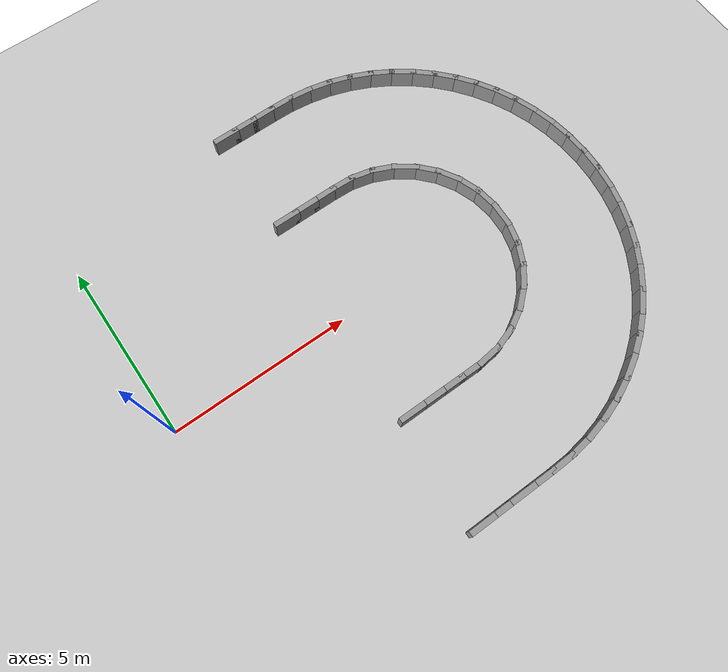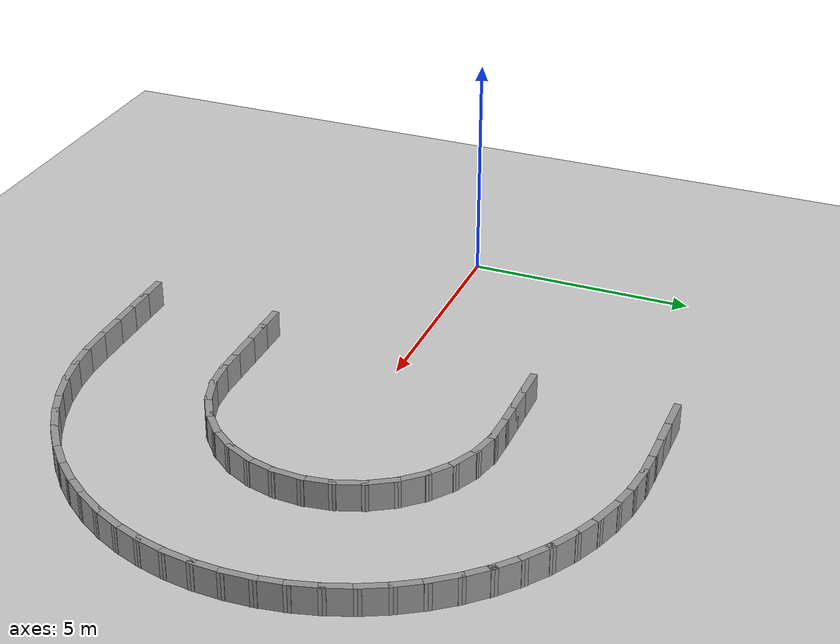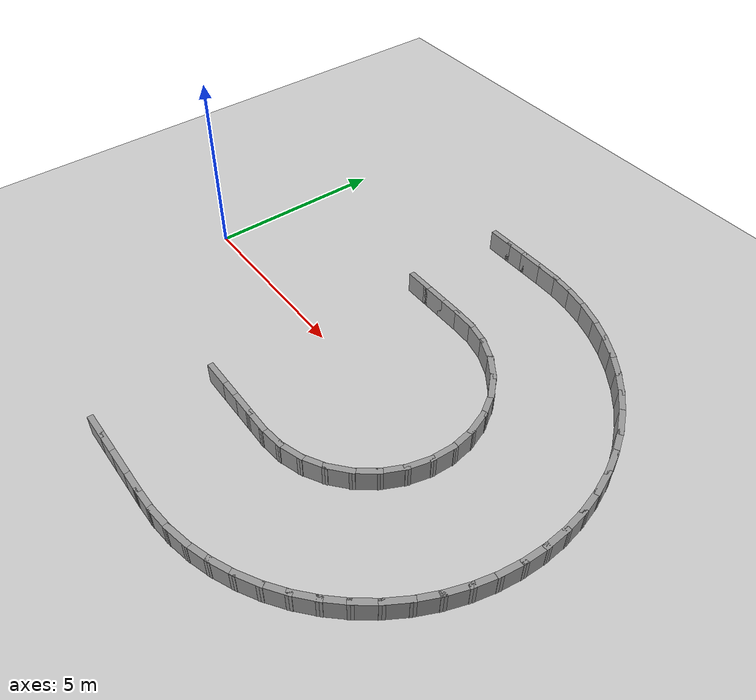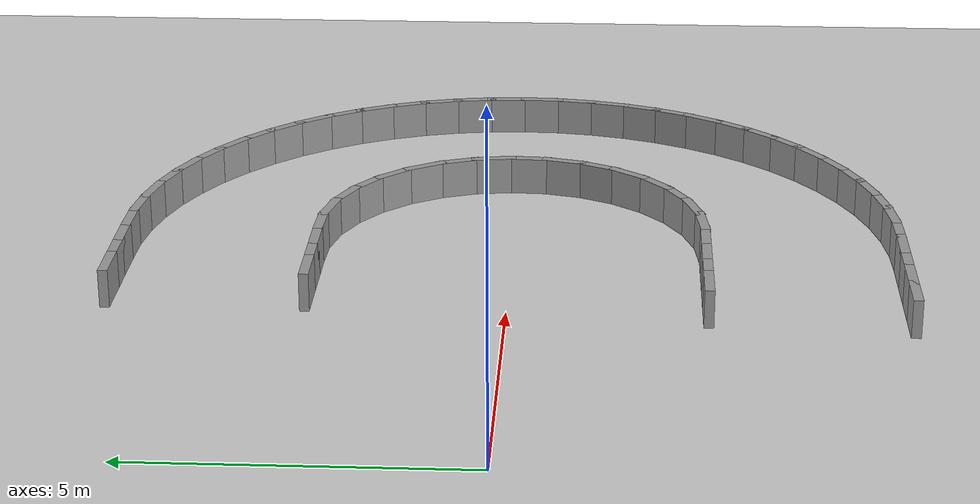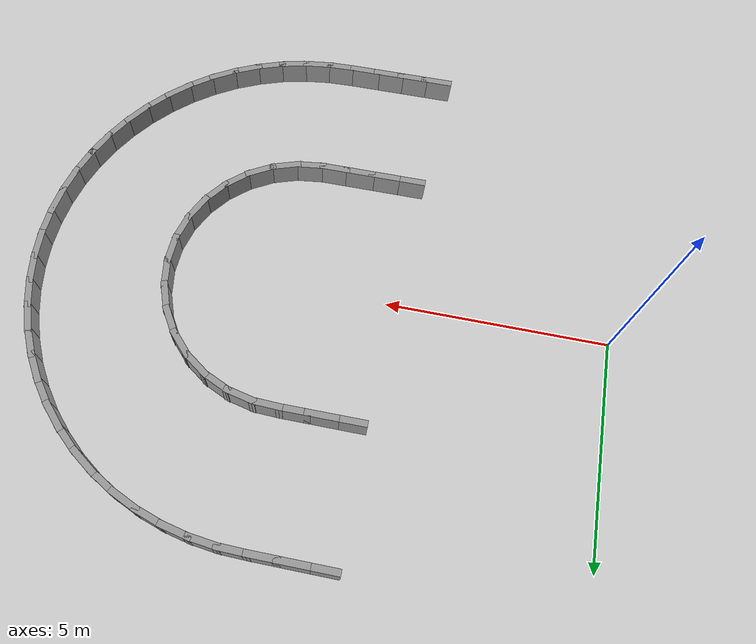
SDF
<sdf version="1.7">
 <world name="default">
  <model name="ground_plane">
   <static>1</static>
   <link name="link">
    <collision name="collision">
     <geometry><plane><normal>0 0 1</normal><size>100 100</size></plane></geometry>
     <surface><friction><ode><mu>100</mu><mu2>50</mu2></ode></friction></surface>
    </collision>
    <visual name="visual">
     <cast_shadows>0</cast_shadows>
     <geometry><plane><normal>0 0 1</normal><size>100 100</size></plane></geometry>
     <material>
      <script><uri>file://media/materials/scripts/gazebo.material</uri><name>Gazebo/Grey</name></script>
     </material>
    </visual>
   </link>
  </model>
  <model name="campus_loop">
   <link name="Wall_20">
    <collision name="Wall_20_Collision">
     <geometry><box><size>0.7500 0.1500 0.6000</size></box></geometry>
     <pose>0 0 0.3000 0 -0 0</pose>
    </collision>
    <visual name="Wall_20_Visual">
     <pose>0 0 0.3000 0 -0 0</pose>
     <geometry><box><size>0.7500 0.1500 0.6000</size></box></geometry>
     <material>
      <script><uri>file://media/materials/scripts/gazebo.material</uri><name>Gazebo/Grey</name></script>
      <ambient>1 1 1 1</ambient>
     </material>
    </visual>
    <pose>5.3000 6.0000 0 0 -0 0.00000</pose>
   </link>
   <link name="Wall_21">
    <collision name="Wall_21_Collision">
     <geometry><box><size>0.7500 0.1500 0.6000</size></box></geometry>
     <pose>0 0 0.3000 0 -0 0</pose>
    </collision>
    <visual name="Wall_21_Visual">
     <pose>0 0 0.3000 0 -0 0</pose>
     <geometry><box><size>0.7500 0.1500 0.6000</size></box></geometry>
     <material>
      <script><uri>file://media/materials/scripts/gazebo.material</uri><name>Gazebo/Grey</name></script>
      <ambient>1 1 1 1</ambient>
     </material>
    </visual>
    <pose>5.9000 6.0000 0 0 -0 0.00000</pose>
   </link>
   <link name="Wall_22">
    <collision name="Wall_22_Collision">
     <geometry><box><size>0.7500 0.1500 0.6000</size></box></geometry>
     <pose>0 0 0.3000 0 -0 0</pose>
    </collision>
    <visual name="Wall_22_Visual">
     <pose>0 0 0.3000 0 -0 0</pose>
     <geometry><box><size>0.7500 0.1500 0.6000</size></box></geometry>
     <material>
      <script><uri>file://media/materials/scripts/gazebo.material</uri><name>Gazebo/Grey</name></script>
      <ambient>1 1 1 1</ambient>
     </material>
    </visual>
    <pose>6.5000 6.0000 0 0 -0 0.00000</pose>
   </link>
   <link name="Wall_23">
    <collision name="Wall_23_Collision">
     <geometry><box><size>0.7498 0.1500 0.6000</size></box></geometry>
     <pose>0 0 0.3000 0 -0 0</pose>
    </collision>
    <visual name="Wall_23_Visual">
     <pose>0 0 0.3000 0 -0 0</pose>
     <geometry><box><size>0.7498 0.1500 0.6000</size></box></geometry>
     <material>
      <script><uri>file://media/materials/scripts/gazebo.material</uri><name>Gazebo/Grey</name></script>
      <ambient>1 1 1 1</ambient>
     </material>
    </visual>
    <pose>7.0998 5.9933 0 0 -0 -0.02244</pose>
   </link>
   <link name="Wall_24">
    <collision name="Wall_24_Collision">
     <geometry><box><size>0.7497 0.1500 0.6000</size></box></geometry>
     <pose>0 0 0.3000 0 -0 0</pose>
    </collision>
    <visual name="Wall_24_Visual">
     <pose>0 0 0.3000 0 -0 0</pose>
     <geometry><box><size>0.7497 0.1500 0.6000</size></box></geometry>
     <material>
      <script><uri>file://media/materials/scripts/gazebo.material</uri><name>Gazebo/Grey</name></script>
      <ambient>1 1 1 1</ambient>
     </material>
    </visual>
    <pose>7.6975 5.9516 0 0 -0 -0.11676</pose>
   </link>
   <link name="Wall_25">
    <collision name="Wall_25_Collision">
     <geometry><box><size>0.7497 0.1500 0.6000</size></box></geometry>
     <pose>0 0 0.3000 0 -0 0</pose>
    </collision>
    <visual name="Wall_25_Visual">
     <pose>0 0 0.3000 0 -0 0</pose>
     <geometry><box><size>0.7497 0.1500 0.6000</size></box></geometry>
     <material>
      <script><uri>file://media/materials/scripts/gazebo.material</uri><name>Gazebo/Grey</name></script>
      <ambient>1 1 1 1</ambient>
     </material>
    </visual>
    <pose>8.2882 5.8523 0 0 -0 -0.21648</pose>
   </link>
   <link name="Wall_26">
    <collision name="Wall_26_Collision">
     <geometry><box><size>0.7497 0.1500 0.6000</size></box></geometry>
     <pose>0 0 0.3000 0 -0 0</pose>
    </collision>
    <visual name="Wall_26_Visual">
     <pose>0 0 0.3000 0 -0 0</pose>
     <geometry><box><size>0.7497 0.1500 0.6000</size></box></geometry>
     <material>
      <script><uri>file://media/materials/scripts/gazebo.material</uri><name>Gazebo/Grey</name></script>
      <ambient>1 1 1 1</ambient>
     </material>
    </visual>
    <pose>8.8661 5.6944 0 0 -0 -0.31677</pose>
   </link>
   <link name="Wall_27">
    <collision name="Wall_27_Collision">
     <geometry><box><size>0.7497 0.1500 0.6000</size></box></geometry>
     <pose>0 0 0.3000 0 -0 0</pose>
    </collision>
    <visual name="Wall_27_Visual">
     <pose>0 0 0.3000 0 -0 0</pose>
     <geometry><box><size>0.7497 0.1500 0.6000</size></box></geometry>
     <material>
      <script><uri>file://media/materials/scripts/gazebo.material</uri><name>Gazebo/Grey</name></script>
      <ambient>1 1 1 1</ambient>
     </material>
    </visual>
    <pose>9.4252 5.4796 0 0 -0 -0.41676</pose>
   </link>
   <link name="Wall_28">
    <collision name="Wall_28_Collision">
     <geometry><box><size>0.7497 0.1500 0.6000</size></box></geometry>
     <pose>0 0 0.3000 0 -0 0</pose>
    </collision>
    <visual name="Wall_28_Visual">
     <pose>0 0 0.3000 0 -0 0</pose>
     <geometry><box><size>0.7497 0.1500 0.6000</size></box></geometry>
     <material>
      <script><uri>file://media/materials/scripts/gazebo.material</uri><name>Gazebo/Grey</name></script>
      <ambient>1 1 1 1</ambient>
     </material>
    </visual>
    <pose>9.9602 5.2102 0 0 -0 -0.51648</pose>
   </link>
   <link name="Wall_29">
    <collision name="Wall_29_Collision">
     <geometry><box><size>0.7497 0.1500 0.6000</size></box></geometry>
     <pose>0 0 0.3000 0 -0 0</pose>
    </collision>
    <visual name="Wall_29_Visual">
     <pose>0 0 0.3000 0 -0 0</pose>
     <geometry><box><size>0.7497 0.1500 0.6000</size></box></geometry>
     <material>
      <script><uri>file://media/materials/scripts/gazebo.material</uri><name>Gazebo/Grey</name></script>
      <ambient>1 1 1 1</ambient>
     </material>
    </visual>
    <pose>10.4655 4.8886 0 0 -0 -0.61678</pose>
   </link>
   <link name="Wall_30">
    <collision name="Wall_30_Collision">
     <geometry><box><size>0.7497 0.1500 0.6000</size></box></geometry>
     <pose>0 0 0.3000 0 -0 0</pose>
    </collision>
    <visual name="Wall_30_Visual">
     <pose>0 0 0.3000 0 -0 0</pose>
     <geometry><box><size>0.7497 0.1500 0.6000</size></box></geometry>
     <material>
      <script><uri>file://media/materials/scripts/gazebo.material</uri><name>Gazebo/Grey</name></script>
      <ambient>1 1 1 1</ambient>
     </material>
    </visual>
    <pose>10.9363 4.5182 0 0 -0 -0.71676</pose>
   </link>
   <link name="Wall_31">
    <collision name="Wall_31_Collision">
     <geometry><box><size>0.7497 0.1500 0.6000</size></box></geometry>
     <pose>0 0 0.3000 0 -0 0</pose>
    </collision>
    <visual name="Wall_31_Visual">
     <pose>0 0 0.3000 0 -0 0</pose>
     <geometry><box><size>0.7497 0.1500 0.6000</size></box></geometry>
     <material>
      <script><uri>file://media/materials/scripts/gazebo.material</uri><name>Gazebo/Grey</name></script>
      <ambient>1 1 1 1</ambient>
     </material>
    </visual>
    <pose>11.3677 4.1027 0 0 -0 -0.81648</pose>
   </link>
   <link name="Wall_32">
    <collision name="Wall_32_Collision">
     <geometry><box><size>0.7497 0.1500 0.6000</size></box></geometry>
     <pose>0 0 0.3000 0 -0 0</pose>
    </collision>
    <visual name="Wall_32_Visual">
     <pose>0 0 0.3000 0 -0 0</pose>
     <geometry><box><size>0.7497 0.1500 0.6000</size></box></geometry>
     <material>
      <script><uri>file://media/materials/scripts/gazebo.material</uri><name>Gazebo/Grey</name></script>
      <ambient>1 1 1 1</ambient>
     </material>
    </visual>
    <pose>11.7555 3.6461 0 0 -0 -0.91678</pose>
   </link>
   <link name="Wall_33">
    <collision name="Wall_33_Collision">
     <geometry><box><size>0.7497 0.1500 0.6000</size></box></geometry>
     <pose>0 0 0.3000 0 -0 0</pose>
    </collision>
    <visual name="Wall_33_Visual">
     <pose>0 0 0.3000 0 -0 0</pose>
     <geometry><box><size>0.7497 0.1500 0.6000</size></box></geometry>
     <material>
      <script><uri>file://media/materials/scripts/gazebo.material</uri><name>Gazebo/Grey</name></script>
      <ambient>1 1 1 1</ambient>
     </material>
    </visual>
    <pose>12.0957 3.1531 0 0 -0 -1.01676</pose>
   </link>
   <link name="Wall_34">
    <collision name="Wall_34_Collision">
     <geometry><box><size>0.7497 0.1500 0.6000</size></box></geometry>
     <pose>0 0 0.3000 0 -0 0</pose>
    </collision>
    <visual name="Wall_34_Visual">
     <pose>0 0 0.3000 0 -0 0</pose>
     <geometry><box><size>0.7497 0.1500 0.6000</size></box></geometry>
     <material>
      <script><uri>file://media/materials/scripts/gazebo.material</uri><name>Gazebo/Grey</name></script>
      <ambient>1 1 1 1</ambient>
     </material>
    </visual>
    <pose>12.3850 2.6287 0 0 -0 -1.11648</pose>
   </link>
   <link name="Wall_35">
    <collision name="Wall_35_Collision">
     <geometry><box><size>0.7497 0.1500 0.6000</size></box></geometry>
     <pose>0 0 0.3000 0 -0 0</pose>
    </collision>
    <visual name="Wall_35_Visual">
     <pose>0 0 0.3000 0 -0 0</pose>
     <geometry><box><size>0.7497 0.1500 0.6000</size></box></geometry>
     <material>
      <script><uri>file://media/materials/scripts/gazebo.material</uri><name>Gazebo/Grey</name></script>
      <ambient>1 1 1 1</ambient>
     </material>
    </visual>
    <pose>12.6206 2.0779 0 0 -0 -1.21679</pose>
   </link>
   <link name="Wall_36">
    <collision name="Wall_36_Collision">
     <geometry><box><size>0.7497 0.1500 0.6000</size></box></geometry>
     <pose>0 0 0.3000 0 -0 0</pose>
    </collision>
    <visual name="Wall_36_Visual">
     <pose>0 0 0.3000 0 -0 0</pose>
     <geometry><box><size>0.7497 0.1500 0.6000</size></box></geometry>
     <material>
      <script><uri>file://media/materials/scripts/gazebo.material</uri><name>Gazebo/Grey</name></script>
      <ambient>1 1 1 1</ambient>
     </material>
    </visual>
    <pose>12.7999 1.5064 0 0 -0 -1.31676</pose>
   </link>
   <link name="Wall_37">
    <collision name="Wall_37_Collision">
     <geometry><box><size>0.7497 0.1500 0.6000</size></box></geometry>
     <pose>0 0 0.3000 0 -0 0</pose>
    </collision>
    <visual name="Wall_37_Visual">
     <pose>0 0 0.3000 0 -0 0</pose>
     <geometry><box><size>0.7497 0.1500 0.6000</size></box></geometry>
     <material>
      <script><uri>file://media/materials/scripts/gazebo.material</uri><name>Gazebo/Grey</name></script>
      <ambient>1 1 1 1</ambient>
     </material>
    </visual>
    <pose>12.9214 0.9199 0 0 -0 -1.41648</pose>
   </link>
   <link name="Wall_38">
    <collision name="Wall_38_Collision">
     <geometry><box><size>0.7497 0.1500 0.6000</size></box></geometry>
     <pose>0 0 0.3000 0 -0 0</pose>
    </collision>
    <visual name="Wall_38_Visual">
     <pose>0 0 0.3000 0 -0 0</pose>
     <geometry><box><size>0.7497 0.1500 0.6000</size></box></geometry>
     <material>
      <script><uri>file://media/materials/scripts/gazebo.material</uri><name>Gazebo/Grey</name></script>
      <ambient>1 1 1 1</ambient>
     </material>
    </visual>
    <pose>12.9836 0.3241 0 0 -0 -1.51680</pose>
   </link>
   <link name="Wall_39">
    <collision name="Wall_39_Collision">
     <geometry><box><size>0.7497 0.1500 0.6000</size></box></geometry>
     <pose>0 0 0.3000 0 -0 0</pose>
    </collision>
    <visual name="Wall_39_Visual">
     <pose>0 0 0.3000 0 -0 0</pose>
     <geometry><box><size>0.7497 0.1500 0.6000</size></box></geometry>
     <material>
      <script><uri>file://media/materials/scripts/gazebo.material</uri><name>Gazebo/Grey</name></script>
      <ambient>1 1 1 1</ambient>
     </material>
    </visual>
    <pose>12.9860 -0.2749 0 0 -0 -1.61676</pose>
   </link>
   <link name="Wall_40">
    <collision name="Wall_40_Collision">
     <geometry><box><size>0.7497 0.1500 0.6000</size></box></geometry>
     <pose>0 0 0.3000 0 -0 0</pose>
    </collision>
    <visual name="Wall_40_Visual">
     <pose>0 0 0.3000 0 -0 0</pose>
     <geometry><box><size>0.7497 0.1500 0.6000</size></box></geometry>
     <material>
      <script><uri>file://media/materials/scripts/gazebo.material</uri><name>Gazebo/Grey</name></script>
      <ambient>1 1 1 1</ambient>
     </material>
    </visual>
    <pose>12.9287 -0.8711 0 0 -0 -1.71648</pose>
   </link>
   <link name="Wall_41">
    <collision name="Wall_41_Collision">
     <geometry><box><size>0.7497 0.1500 0.6000</size></box></geometry>
     <pose>0 0 0.3000 0 -0 0</pose>
    </collision>
    <visual name="Wall_41_Visual">
     <pose>0 0 0.3000 0 -0 0</pose>
     <geometry><box><size>0.7497 0.1500 0.6000</size></box></geometry>
     <material>
      <script><uri>file://media/materials/scripts/gazebo.material</uri><name>Gazebo/Grey</name></script>
      <ambient>1 1 1 1</ambient>
     </material>
    </visual>
    <pose>12.8122 -1.4587 0 0 -0 -1.81681</pose>
   </link>
   <link name="Wall_42">
    <collision name="Wall_42_Collision">
     <geometry><box><size>0.7497 0.1500 0.6000</size></box></geometry>
     <pose>0 0 0.3000 0 -0 0</pose>
    </collision>
    <visual name="Wall_42_Visual">
     <pose>0 0 0.3000 0 -0 0</pose>
     <geometry><box><size>0.7497 0.1500 0.6000</size></box></geometry>
     <material>
      <script><uri>file://media/materials/scripts/gazebo.material</uri><name>Gazebo/Grey</name></script>
      <ambient>1 1 1 1</ambient>
     </material>
    </visual>
    <pose>12.6374 -2.0316 0 0 -0 -1.91676</pose>
   </link>
   <link name="Wall_43">
    <collision name="Wall_43_Collision">
     <geometry><box><size>0.7497 0.1500 0.6000</size></box></geometry>
     <pose>0 0 0.3000 0 -0 0</pose>
    </collision>
    <visual name="Wall_43_Visual">
     <pose>0 0 0.3000 0 -0 0</pose>
     <geometry><box><size>0.7497 0.1500 0.6000</size></box></geometry>
     <material>
      <script><uri>file://media/materials/scripts/gazebo.material</uri><name>Gazebo/Grey</name></script>
      <ambient>1 1 1 1</ambient>
     </material>
    </visual>
    <pose>12.4065 -2.5843 0 0 -0 -2.01648</pose>
   </link>
   <link name="Wall_44">
    <collision name="Wall_44_Collision">
     <geometry><box><size>0.7497 0.1500 0.6000</size></box></geometry>
     <pose>0 0 0.3000 0 -0 0</pose>
    </collision>
    <visual name="Wall_44_Visual">
     <pose>0 0 0.3000 0 -0 0</pose>
     <geometry><box><size>0.7497 0.1500 0.6000</size></box></geometry>
     <material>
      <script><uri>file://media/materials/scripts/gazebo.material</uri><name>Gazebo/Grey</name></script>
      <ambient>1 1 1 1</ambient>
     </material>
    </visual>
    <pose>12.1215 -3.1111 0 0 -0 -2.11682</pose>
   </link>
   <link name="Wall_45">
    <collision name="Wall_45_Collision">
     <geometry><box><size>0.7497 0.1500 0.6000</size></box></geometry>
     <pose>0 0 0.3000 0 -0 0</pose>
    </collision>
    <visual name="Wall_45_Visual">
     <pose>0 0 0.3000 0 -0 0</pose>
     <geometry><box><size>0.7497 0.1500 0.6000</size></box></geometry>
     <material>
      <script><uri>file://media/materials/scripts/gazebo.material</uri><name>Gazebo/Grey</name></script>
      <ambient>1 1 1 1</ambient>
     </material>
    </visual>
    <pose>11.7853 -3.6069 0 0 -0 -2.21676</pose>
   </link>
   <link name="Wall_46">
    <collision name="Wall_46_Collision">
     <geometry><box><size>0.7497 0.1500 0.6000</size></box></geometry>
     <pose>0 0 0.3000 0 -0 0</pose>
    </collision>
    <visual name="Wall_46_Visual">
     <pose>0 0 0.3000 0 -0 0</pose>
     <geometry><box><size>0.7497 0.1500 0.6000</size></box></geometry>
     <material>
      <script><uri>file://media/materials/scripts/gazebo.material</uri><name>Gazebo/Grey</name></script>
      <ambient>1 1 1 1</ambient>
     </material>
    </visual>
    <pose>11.4013 -4.0666 0 0 -0 -2.31648</pose>
   </link>
   <link name="Wall_47">
    <collision name="Wall_47_Collision">
     <geometry><box><size>0.7497 0.1500 0.6000</size></box></geometry>
     <pose>0 0 0.3000 0 -0 0</pose>
    </collision>
    <visual name="Wall_47_Visual">
     <pose>0 0 0.3000 0 -0 0</pose>
     <geometry><box><size>0.7497 0.1500 0.6000</size></box></geometry>
     <material>
      <script><uri>file://media/materials/scripts/gazebo.material</uri><name>Gazebo/Grey</name></script>
      <ambient>1 1 1 1</ambient>
     </material>
    </visual>
    <pose>10.9733 -4.4857 0 0 -0 -2.41683</pose>
   </link>
   <link name="Wall_48">
    <collision name="Wall_48_Collision">
     <geometry><box><size>0.7497 0.1500 0.6000</size></box></geometry>
     <pose>0 0 0.3000 0 -0 0</pose>
    </collision>
    <visual name="Wall_48_Visual">
     <pose>0 0 0.3000 0 -0 0</pose>
     <geometry><box><size>0.7497 0.1500 0.6000</size></box></geometry>
     <material>
      <script><uri>file://media/materials/scripts/gazebo.material</uri><name>Gazebo/Grey</name></script>
      <ambient>1 1 1 1</ambient>
     </material>
    </visual>
    <pose>10.5056 -4.8599 0 0 -0 -2.51676</pose>
   </link>
   <link name="Wall_49">
    <collision name="Wall_49_Collision">
     <geometry><box><size>0.7497 0.1500 0.6000</size></box></geometry>
     <pose>0 0 0.3000 0 -0 0</pose>
    </collision>
    <visual name="Wall_49_Visual">
     <pose>0 0 0.3000 0 -0 0</pose>
     <geometry><box><size>0.7497 0.1500 0.6000</size></box></geometry>
     <material>
      <script><uri>file://media/materials/scripts/gazebo.material</uri><name>Gazebo/Grey</name></script>
      <ambient>1 1 1 1</ambient>
     </material>
    </visual>
    <pose>10.0029 -5.1857 0 0 -0 -2.61648</pose>
   </link>
   <link name="Wall_50">
    <collision name="Wall_50_Collision">
     <geometry><box><size>0.7497 0.1500 0.6000</size></box></geometry>
     <pose>0 0 0.3000 0 -0 0</pose>
    </collision>
    <visual name="Wall_50_Visual">
     <pose>0 0 0.3000 0 -0 0</pose>
     <geometry><box><size>0.7497 0.1500 0.6000</size></box></geometry>
     <material>
      <script><uri>file://media/materials/scripts/gazebo.material</uri><name>Gazebo/Grey</name></script>
      <ambient>1 1 1 1</ambient>
     </material>
    </visual>
    <pose>9.4702 -5.4596 0 0 -0 -2.71684</pose>
   </link>
   <link name="Wall_51">
    <collision name="Wall_51_Collision">
     <geometry><box><size>0.7497 0.1500 0.6000</size></box></geometry>
     <pose>0 0 0.3000 0 -0 0</pose>
    </collision>
    <visual name="Wall_51_Visual">
     <pose>0 0 0.3000 0 -0 0</pose>
     <geometry><box><size>0.7497 0.1500 0.6000</size></box></geometry>
     <material>
      <script><uri>file://media/materials/scripts/gazebo.material</uri><name>Gazebo/Grey</name></script>
      <ambient>1 1 1 1</ambient>
     </material>
    </visual>
    <pose>8.9128 -5.6788 0 0 -0 -2.81676</pose>
   </link>
   <link name="Wall_52">
    <collision name="Wall_52_Collision">
     <geometry><box><size>0.7497 0.1500 0.6000</size></box></geometry>
     <pose>0 0 0.3000 0 -0 0</pose>
    </collision>
    <visual name="Wall_52_Visual">
     <pose>0 0 0.3000 0 -0 0</pose>
     <geometry><box><size>0.7497 0.1500 0.6000</size></box></geometry>
     <material>
      <script><uri>file://media/materials/scripts/gazebo.material</uri><name>Gazebo/Grey</name></script>
      <ambient>1 1 1 1</ambient>
     </material>
    </visual>
    <pose>8.3363 -5.8415 0 0 -0 -2.91649</pose>
   </link>
   <link name="Wall_53">
    <collision name="Wall_53_Collision">
     <geometry><box><size>0.7497 0.1500 0.6000</size></box></geometry>
     <pose>0 0 0.3000 0 -0 0</pose>
    </collision>
    <visual name="Wall_53_Visual">
     <pose>0 0 0.3000 0 -0 0</pose>
     <geometry><box><size>0.7497 0.1500 0.6000</size></box></geometry>
     <material>
      <script><uri>file://media/materials/scripts/gazebo.material</uri><name>Gazebo/Grey</name></script>
      <ambient>1 1 1 1</ambient>
     </material>
    </visual>
    <pose>7.7465 -5.9457 0 0 -0 -3.01684</pose>
   </link>
   <link name="Wall_54">
    <collision name="Wall_54_Collision">
     <geometry><box><size>0.7498 0.1500 0.6000</size></box></geometry>
     <pose>0 0 0.3000 0 -0 0</pose>
    </collision>
    <visual name="Wall_54_Visual">
     <pose>0 0 0.3000 0 -0 0</pose>
     <geometry><box><size>0.7498 0.1500 0.6000</size></box></geometry>
     <material>
      <script><uri>file://media/materials/scripts/gazebo.material</uri><name>Gazebo/Grey</name></script>
      <ambient>1 1 1 1</ambient>
     </material>
    </visual>
    <pose>7.1491 -5.9915 0 0 -0 -3.11331</pose>
   </link>
   <link name="Wall_55">
    <collision name="Wall_55_Collision">
     <geometry><box><size>0.7500 0.1500 0.6000</size></box></geometry>
     <pose>0 0 0.3000 0 -0 0</pose>
    </collision>
    <visual name="Wall_55_Visual">
     <pose>0 0 0.3000 0 -0 0</pose>
     <geometry><box><size>0.7500 0.1500 0.6000</size></box></geometry>
     <material>
      <script><uri>file://media/materials/scripts/gazebo.material</uri><name>Gazebo/Grey</name></script>
      <ambient>1 1 1 1</ambient>
     </material>
    </visual>
    <pose>6.5494 -6.0000 0 0 -0 3.14159</pose>
   </link>
   <link name="Wall_56">
    <collision name="Wall_56_Collision">
     <geometry><box><size>0.7500 0.1500 0.6000</size></box></geometry>
     <pose>0 0 0.3000 0 -0 0</pose>
    </collision>
    <visual name="Wall_56_Visual">
     <pose>0 0 0.3000 0 -0 0</pose>
     <geometry><box><size>0.7500 0.1500 0.6000</size></box></geometry>
     <material>
      <script><uri>file://media/materials/scripts/gazebo.material</uri><name>Gazebo/Grey</name></script>
      <ambient>1 1 1 1</ambient>
     </material>
    </visual>
    <pose>5.9494 -6.0000 0 0 -0 3.14159</pose>
   </link>
   <link name="Wall_57">
    <collision name="Wall_57_Collision">
     <geometry><box><size>0.7500 0.1500 0.6000</size></box></geometry>
     <pose>0 0 0.3000 0 -0 0</pose>
    </collision>
    <visual name="Wall_57_Visual">
     <pose>0 0 0.3000 0 -0 0</pose>
     <geometry><box><size>0.7500 0.1500 0.6000</size></box></geometry>
     <material>
      <script><uri>file://media/materials/scripts/gazebo.material</uri><name>Gazebo/Grey</name></script>
      <ambient>1 1 1 1</ambient>
     </material>
    </visual>
    <pose>5.3494 -6.0000 0 0 -0 3.14159</pose>
   </link>
   <link name="Wall_58">
    <collision name="Wall_58_Collision">
     <geometry><box><size>0.7500 0.1500 0.6000</size></box></geometry>
     <pose>0 0 0.3000 0 -0 0</pose>
    </collision>
    <visual name="Wall_58_Visual">
     <pose>0 0 0.3000 0 -0 0</pose>
     <geometry><box><size>0.7500 0.1500 0.6000</size></box></geometry>
     <material>
      <script><uri>file://media/materials/scripts/gazebo.material</uri><name>Gazebo/Grey</name></script>
      <ambient>1 1 1 1</ambient>
     </material>
    </visual>
    <pose>4.7494 -6.0000 0 0 -0 3.14159</pose>
   </link>
   <link name="Wall_129">
    <collision name="Wall_129_Collision">
     <geometry><box><size>0.7500 0.1500 0.6000</size></box></geometry>
     <pose>0 0 0.3000 0 -0 0</pose>
    </collision>
    <visual name="Wall_129_Visual">
     <pose>0 0 0.3000 0 -0 0</pose>
     <geometry><box><size>0.7500 0.1500 0.6000</size></box></geometry>
     <material>
      <script><uri>file://media/materials/scripts/gazebo.material</uri><name>Gazebo/Grey</name></script>
      <ambient>1 1 1 1</ambient>
     </material>
    </visual>
    <pose>5.3000 3.0000 0 0 -0 0.00000</pose>
   </link>
   <link name="Wall_130">
    <collision name="Wall_130_Collision">
     <geometry><box><size>0.7500 0.1500 0.6000</size></box></geometry>
     <pose>0 0 0.3000 0 -0 0</pose>
    </collision>
    <visual name="Wall_130_Visual">
     <pose>0 0 0.3000 0 -0 0</pose>
     <geometry><box><size>0.7500 0.1500 0.6000</size></box></geometry>
     <material>
      <script><uri>file://media/materials/scripts/gazebo.material</uri><name>Gazebo/Grey</name></script>
      <ambient>1 1 1 1</ambient>
     </material>
    </visual>
    <pose>5.9000 3.0000 0 0 -0 0.00000</pose>
   </link>
   <link name="Wall_131">
    <collision name="Wall_131_Collision">
     <geometry><box><size>0.7500 0.1500 0.6000</size></box></geometry>
     <pose>0 0 0.3000 0 -0 0</pose>
    </collision>
    <visual name="Wall_131_Visual">
     <pose>0 0 0.3000 0 -0 0</pose>
     <geometry><box><size>0.7500 0.1500 0.6000</size></box></geometry>
     <material>
      <script><uri>file://media/materials/scripts/gazebo.material</uri><name>Gazebo/Grey</name></script>
      <ambient>1 1 1 1</ambient>
     </material>
    </visual>
    <pose>6.5000 3.0000 0 0 -0 0.00000</pose>
   </link>
   <link name="Wall_132">
    <collision name="Wall_132_Collision">
     <geometry><box><size>0.7258 0.1500 0.6000</size></box></geometry>
     <pose>0 0 0.3000 0 -0 0</pose>
    </collision>
    <visual name="Wall_132_Visual">
     <pose>0 0 0.3000 0 -0 0</pose>
     <geometry><box><size>0.7258 0.1500 0.6000</size></box></geometry>
     <material>
      <script><uri>file://media/materials/scripts/gazebo.material</uri><name>Gazebo/Grey</name></script>
      <ambient>1 1 1 1</ambient>
     </material>
    </visual>
    <pose>7.0877 2.9882 0 0 -0 -0.04098</pose>
   </link>
   <link name="Wall_133">
    <collision name="Wall_133_Collision">
     <geometry><box><size>0.7490 0.1500 0.6000</size></box></geometry>
     <pose>0 0 0.3000 0 -0 0</pose>
    </collision>
    <visual name="Wall_133_Visual">
     <pose>0 0 0.3000 0 -0 0</pose>
     <geometry><box><size>0.7490 0.1500 0.6000</size></box></geometry>
     <material>
      <script><uri>file://media/materials/scripts/gazebo.material</uri><name>Gazebo/Grey</name></script>
      <ambient>1 1 1 1</ambient>
     </material>
    </visual>
    <pose>7.6672 2.9094 0 0 -0 -0.22556</pose>
   </link>
   <link name="Wall_134">
    <collision name="Wall_134_Collision">
     <geometry><box><size>0.7490 0.1500 0.6000</size></box></geometry>
     <pose>0 0 0.3000 0 -0 0</pose>
    </collision>
    <visual name="Wall_134_Visual">
     <pose>0 0 0.3000 0 -0 0</pose>
     <geometry><box><size>0.7490 0.1500 0.6000</size></box></geometry>
     <material>
      <script><uri>file://media/materials/scripts/gazebo.material</uri><name>Gazebo/Grey</name></script>
      <ambient>1 1 1 1</ambient>
     </material>
    </visual>
    <pose>8.2320 2.7188 0 0 -0 -0.42542</pose>
   </link>
   <link name="Wall_135">
    <collision name="Wall_135_Collision">
     <geometry><box><size>0.7490 0.1500 0.6000</size></box></geometry>
     <pose>0 0 0.3000 0 -0 0</pose>
    </collision>
    <visual name="Wall_135_Visual">
     <pose>0 0 0.3000 0 -0 0</pose>
     <geometry><box><size>0.7490 0.1500 0.6000</size></box></geometry>
     <material>
      <script><uri>file://media/materials/scripts/gazebo.material</uri><name>Gazebo/Grey</name></script>
      <ambient>1 1 1 1</ambient>
     </material>
    </visual>
    <pose>8.7476 2.4199 0 0 -0 -0.62535</pose>
   </link>
   <link name="Wall_136">
    <collision name="Wall_136_Collision">
     <geometry><box><size>0.7490 0.1500 0.6000</size></box></geometry>
     <pose>0 0 0.3000 0 -0 0</pose>
    </collision>
    <visual name="Wall_136_Visual">
     <pose>0 0 0.3000 0 -0 0</pose>
     <geometry><box><size>0.7490 0.1500 0.6000</size></box></geometry>
     <material>
      <script><uri>file://media/materials/scripts/gazebo.material</uri><name>Gazebo/Grey</name></script>
      <ambient>1 1 1 1</ambient>
     </material>
    </visual>
    <pose>9.1935 2.0245 0 0 -0 -0.82557</pose>
   </link>
   <link name="Wall_137">
    <collision name="Wall_137_Collision">
     <geometry><box><size>0.7490 0.1500 0.6000</size></box></geometry>
     <pose>0 0 0.3000 0 -0 0</pose>
    </collision>
    <visual name="Wall_137_Visual">
     <pose>0 0 0.3000 0 -0 0</pose>
     <geometry><box><size>0.7490 0.1500 0.6000</size></box></geometry>
     <material>
      <script><uri>file://media/materials/scripts/gazebo.material</uri><name>Gazebo/Grey</name></script>
      <ambient>1 1 1 1</ambient>
     </material>
    </visual>
    <pose>9.5520 1.5483 0 0 -0 -1.02543</pose>
   </link>
   <link name="Wall_138">
    <collision name="Wall_138_Collision">
     <geometry><box><size>0.7490 0.1500 0.6000</size></box></geometry>
     <pose>0 0 0.3000 0 -0 0</pose>
    </collision>
    <visual name="Wall_138_Visual">
     <pose>0 0 0.3000 0 -0 0</pose>
     <geometry><box><size>0.7490 0.1500 0.6000</size></box></geometry>
     <material>
      <script><uri>file://media/materials/scripts/gazebo.material</uri><name>Gazebo/Grey</name></script>
      <ambient>1 1 1 1</ambient>
     </material>
    </visual>
    <pose>9.8087 1.0105 0 0 -0 -1.22535</pose>
   </link>
   <link name="Wall_139">
    <collision name="Wall_139_Collision">
     <geometry><box><size>0.7490 0.1500 0.6000</size></box></geometry>
     <pose>0 0 0.3000 0 -0 0</pose>
    </collision>
    <visual name="Wall_139_Visual">
     <pose>0 0 0.3000 0 -0 0</pose>
     <geometry><box><size>0.7490 0.1500 0.6000</size></box></geometry>
     <material>
      <script><uri>file://media/materials/scripts/gazebo.material</uri><name>Gazebo/Grey</name></script>
      <ambient>1 1 1 1</ambient>
     </material>
    </visual>
    <pose>9.9535 0.4323 0 0 -0 -1.42558</pose>
   </link>
   <link name="Wall_140">
    <collision name="Wall_140_Collision">
     <geometry><box><size>0.7490 0.1500 0.6000</size></box></geometry>
     <pose>0 0 0.3000 0 -0 0</pose>
    </collision>
    <visual name="Wall_140_Visual">
     <pose>0 0 0.3000 0 -0 0</pose>
     <geometry><box><size>0.7490 0.1500 0.6000</size></box></geometry>
     <material>
      <script><uri>file://media/materials/scripts/gazebo.material</uri><name>Gazebo/Grey</name></script>
      <ambient>1 1 1 1</ambient>
     </material>
    </visual>
    <pose>9.9805 -0.1631 0 0 -0 -1.62544</pose>
   </link>
   <link name="Wall_141">
    <collision name="Wall_141_Collision">
     <geometry><box><size>0.7490 0.1500 0.6000</size></box></geometry>
     <pose>0 0 0.3000 0 -0 0</pose>
    </collision>
    <visual name="Wall_141_Visual">
     <pose>0 0 0.3000 0 -0 0</pose>
     <geometry><box><size>0.7490 0.1500 0.6000</size></box></geometry>
     <material>
      <script><uri>file://media/materials/scripts/gazebo.material</uri><name>Gazebo/Grey</name></script>
      <ambient>1 1 1 1</ambient>
     </material>
    </visual>
    <pose>9.8887 -0.7520 0 0 -0 -1.82535</pose>
   </link>
   <link name="Wall_142">
    <collision name="Wall_142_Collision">
     <geometry><box><size>0.7490 0.1500 0.6000</size></box></geometry>
     <pose>0 0 0.3000 0 -0 0</pose>
    </collision>
    <visual name="Wall_142_Visual">
     <pose>0 0 0.3000 0 -0 0</pose>
     <geometry><box><size>0.7490 0.1500 0.6000</size></box></geometry>
     <material>
      <script><uri>file://media/materials/scripts/gazebo.material</uri><name>Gazebo/Grey</name></script>
      <ambient>1 1 1 1</ambient>
     </material>
    </visual>
    <pose>9.6817 -1.3109 0 0 -0 -2.02558</pose>
   </link>
   <link name="Wall_143">
    <collision name="Wall_143_Collision">
     <geometry><box><size>0.7490 0.1500 0.6000</size></box></geometry>
     <pose>0 0 0.3000 0 -0 0</pose>
    </collision>
    <visual name="Wall_143_Visual">
     <pose>0 0 0.3000 0 -0 0</pose>
     <geometry><box><size>0.7490 0.1500 0.6000</size></box></geometry>
     <material>
      <script><uri>file://media/materials/scripts/gazebo.material</uri><name>Gazebo/Grey</name></script>
      <ambient>1 1 1 1</ambient>
     </material>
    </visual>
    <pose>9.3678 -1.8175 0 0 -0 -2.22545</pose>
   </link>
   <link name="Wall_144">
    <collision name="Wall_144_Collision">
     <geometry><box><size>0.7490 0.1500 0.6000</size></box></geometry>
     <pose>0 0 0.3000 0 -0 0</pose>
    </collision>
    <visual name="Wall_144_Visual">
     <pose>0 0 0.3000 0 -0 0</pose>
     <geometry><box><size>0.7490 0.1500 0.6000</size></box></geometry>
     <material>
      <script><uri>file://media/materials/scripts/gazebo.material</uri><name>Gazebo/Grey</name></script>
      <ambient>1 1 1 1</ambient>
     </material>
    </visual>
    <pose>8.9595 -2.2517 0 0 -0 -2.42535</pose>
   </link>
   <link name="Wall_145">
    <collision name="Wall_145_Collision">
     <geometry><box><size>0.7490 0.1500 0.6000</size></box></geometry>
     <pose>0 0 0.3000 0 -0 0</pose>
    </collision>
    <visual name="Wall_145_Visual">
     <pose>0 0 0.3000 0 -0 0</pose>
     <geometry><box><size>0.7490 0.1500 0.6000</size></box></geometry>
     <material>
      <script><uri>file://media/materials/scripts/gazebo.material</uri><name>Gazebo/Grey</name></script>
      <ambient>1 1 1 1</ambient>
     </material>
    </visual>
    <pose>8.4731 -2.5961 0 0 -0 -2.62559</pose>
   </link>
   <link name="Wall_146">
    <collision name="Wall_146_Collision">
     <geometry><box><size>0.7490 0.1500 0.6000</size></box></geometry>
     <pose>0 0 0.3000 0 -0 0</pose>
    </collision>
    <visual name="Wall_146_Visual">
     <pose>0 0 0.3000 0 -0 0</pose>
     <geometry><box><size>0.7490 0.1500 0.6000</size></box></geometry>
     <material>
      <script><uri>file://media/materials/scripts/gazebo.material</uri><name>Gazebo/Grey</name></script>
      <ambient>1 1 1 1</ambient>
     </material>
    </visual>
    <pose>7.9280 -2.8370 0 0 -0 -2.82546</pose>
   </link>
   <link name="Wall_147">
    <collision name="Wall_147_Collision">
     <geometry><box><size>0.7490 0.1500 0.6000</size></box></geometry>
     <pose>0 0 0.3000 0 -0 0</pose>
    </collision>
    <visual name="Wall_147_Visual">
     <pose>0 0 0.3000 0 -0 0</pose>
     <geometry><box><size>0.7490 0.1500 0.6000</size></box></geometry>
     <material>
      <script><uri>file://media/materials/scripts/gazebo.material</uri><name>Gazebo/Grey</name></script>
      <ambient>1 1 1 1</ambient>
     </material>
    </visual>
    <pose>7.3458 -2.9649 0 0 -0 -3.02535</pose>
   </link>
   <link name="Wall_148">
    <collision name="Wall_148_Collision">
     <geometry><box><size>0.7263 0.1500 0.6000</size></box></geometry>
     <pose>0 0 0.3000 0 -0 0</pose>
    </collision>
    <visual name="Wall_148_Visual">
     <pose>0 0 0.3000 0 -0 0</pose>
     <geometry><box><size>0.7263 0.1500 0.6000</size></box></geometry>
     <material>
      <script><uri>file://media/materials/scripts/gazebo.material</uri><name>Gazebo/Grey</name></script>
      <ambient>1 1 1 1</ambient>
     </material>
    </visual>
    <pose>6.7602 -2.9998 0 0 -0 -3.14090</pose>
   </link>
   <link name="Wall_149">
    <collision name="Wall_149_Collision">
     <geometry><box><size>0.7500 0.1500 0.6000</size></box></geometry>
     <pose>0 0 0.3000 0 -0 0</pose>
    </collision>
    <visual name="Wall_149_Visual">
     <pose>0 0 0.3000 0 -0 0</pose>
     <geometry><box><size>0.7500 0.1500 0.6000</size></box></geometry>
     <material>
      <script><uri>file://media/materials/scripts/gazebo.material</uri><name>Gazebo/Grey</name></script>
      <ambient>1 1 1 1</ambient>
     </material>
    </visual>
    <pose>6.1720 -3.0000 0 0 -0 3.14159</pose>
   </link>
   <link name="Wall_150">
    <collision name="Wall_150_Collision">
     <geometry><box><size>0.7500 0.1500 0.6000</size></box></geometry>
     <pose>0 0 0.3000 0 -0 0</pose>
    </collision>
    <visual name="Wall_150_Visual">
     <pose>0 0 0.3000 0 -0 0</pose>
     <geometry><box><size>0.7500 0.1500 0.6000</size></box></geometry>
     <material>
      <script><uri>file://media/materials/scripts/gazebo.material</uri><name>Gazebo/Grey</name></script>
      <ambient>1 1 1 1</ambient>
     </material>
    </visual>
    <pose>5.5720 -3.0000 0 0 -0 3.14159</pose>
   </link>
   <link name="Wall_151">
    <collision name="Wall_151_Collision">
     <geometry><box><size>0.7500 0.1500 0.6000</size></box></geometry>
     <pose>0 0 0.3000 0 -0 0</pose>
    </collision>
    <visual name="Wall_151_Visual">
     <pose>0 0 0.3000 0 -0 0</pose>
     <geometry><box><size>0.7500 0.1500 0.6000</size></box></geometry>
     <material>
      <script><uri>file://media/materials/scripts/gazebo.material</uri><name>Gazebo/Grey</name></script>
      <ambient>1 1 1 1</ambient>
     </material>
    </visual>
    <pose>4.9720 -3.0000 0 0 -0 3.14159</pose>
   </link>
   <static>1</static>
  </model>
 </world>
</sdf>
